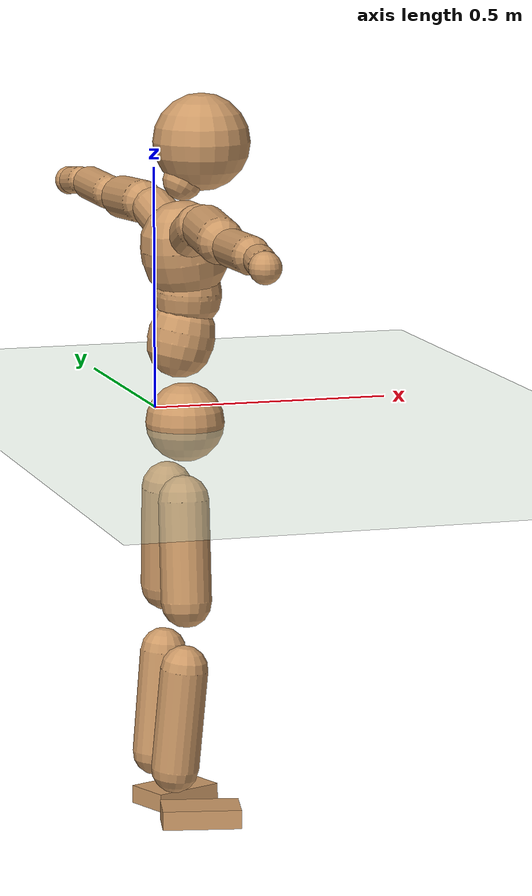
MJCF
<mujoco model="humanoid">
  <compiler coordinate="local" angle="radian"/>
  <default>
    <joint damping="0.0" armature="0.01" stiffness="0.0" limited="true"/>
    <geom conaffinity="1" condim="3" contype="7" margin="0.001" rgba="0.8 0.6 .4 1"/>
  </default>
  <asset>
    <texture type="skybox" builtin="gradient" rgb1=".4 .5 .6" rgb2="0 0 0" width="100" height="100"/>
    <texture builtin="flat" height="1278" mark="cross" markrgb="1 1 1" name="texgeom" random="0.01" rgb1="0.8 0.6 0.4" rgb2="0.8 0.6 0.4" type="cube" width="127"/>
    <texture builtin="checker" height="100" name="texplane" rgb1="0 0 0" rgb2="0.8 0.8 0.8" type="2d" width="100"/>
    <material name="MatPlane" reflectance="0.5" shininess="1" specular="1" texrepeat="60 60" texture="texplane"/>
    <material name="geom" texture="texgeom" texuniform="true"/>
  </asset>
  <worldbody>
    <light cutoff="100" diffuse="1 1 1" dir="-0 0 -1.3" directional="true" exponent="1" pos="0 0 1.3" specular=".1 .1 .1"/>
    <geom conaffinity="1" condim="3" name="floor" pos="0 0 0" rgba="0.8 0.9 0.8 1" size="100 100 .2" type="plane" material="MatPlane"/>
    <body name="Pelvis" pos="0.0008 -0.2209 0.0084">
      <freejoint name="Pelvis"/>
      <geom type="sphere" contype="1" conaffinity="1" density="500" size="0.0802" pos="0.0000 0.0000 0.0000" name="Pelvis"/>
      <body name="L_Hip" pos="-0.0226 0.0504 -0.074">
        <joint name="L_Hip_x" type="hinge" pos="0 0 0" axis="1 0 0" stiffness="800" damping="80" armature="0.02" range="-180.0000 180.0000"/>
        <joint name="L_Hip_y" type="hinge" pos="0 0 0" axis="0 1 0" stiffness="800" damping="80" armature="0.02" range="-180.0000 180.0000"/>
        <joint name="L_Hip_z" type="hinge" pos="0 0 0" axis="0 0 1" stiffness="800" damping="80" armature="0.02" range="-180.0000 180.0000"/>
        <geom type="capsule" contype="1" conaffinity="1" density="500" fromto="0.0013 0.0081 -0.0696 0.0052 0.0323 -0.2786" size="0.0522" name="L_Hip"/>
        <body name="L_Knee" pos="0.0065 0.0404 -0.3482">
          <joint name="L_Knee_x" type="hinge" pos="0 0 0" axis="1 0 0" stiffness="800" damping="80" armature="0.02" range="-180.0000 180.0000"/>
          <joint name="L_Knee_y" type="hinge" pos="0 0 0" axis="0 1 0" stiffness="800" damping="80" armature="0.02" range="-180.0000 180.0000"/>
          <joint name="L_Knee_z" type="hinge" pos="0 0 0" axis="0 0 1" stiffness="800" damping="80" armature="0.02" range="-180.0000 180.0000"/>
          <geom type="capsule" contype="1" conaffinity="1" density="500" fromto="-0.0063 -0.0021 -0.0710 -0.0252 -0.0086 -0.2840" size="0.0475" name="L_Knee"/>
          <body name="L_Ankle" pos="-0.0315 -0.0107 -0.355">
            <joint name="L_Ankle_x" type="hinge" pos="0 0 0" axis="1 0 0" stiffness="800" damping="80" armature="0.02" range="-180.0000 180.0000"/>
            <joint name="L_Ankle_y" type="hinge" pos="0 0 0" axis="0 1 0" stiffness="800" damping="80" armature="0.02" range="-180.0000 180.0000"/>
            <joint name="L_Ankle_z" type="hinge" pos="0 0 0" axis="0 0 1" stiffness="800" damping="80" armature="0.02" range="-180.0000 180.0000"/>
            <geom type="box" contype="1" conaffinity="1" density="500" pos="0.0532 0.0211 -0.0261" size="0.0742 0.0482 0.0185" quat="0.9822 0.0000 0.0000 0.1879" name="L_Ankle"/>
            <body name="L_Toe" pos="0.1064 0.0423 -0.0523">
              <joint name="L_Toe_x" type="hinge" pos="0 0 0" axis="1 0 0" stiffness="500" damping="50" armature="0.02" range="-180.0000 180.0000"/>
              <joint name="L_Toe_y" type="hinge" pos="0 0 0" axis="0 1 0" stiffness="500" damping="50" armature="0.02" range="-180.0000 180.0000"/>
              <joint name="L_Toe_z" type="hinge" pos="0 0 0" axis="0 0 1" stiffness="500" damping="50" armature="0.02" range="-180.0000 180.0000"/>
              <geom type="box" contype="1" conaffinity="1" density="500" pos="0.0000 0.0000 0.0274" size="0.001 0.0023 0.001" quat="0.9813 0.0000 0.0000 0.1926" name="L_Toe"/>
            </body>
          </body>
        </body>
      </body>
      <body name="R_Hip" pos="-0.0199 -0.0529 -0.0814">
        <joint name="R_Hip_x" type="hinge" pos="0 0 0" axis="1 0 0" stiffness="800" damping="80" armature="0.02" range="-180.0000 180.0000"/>
        <joint name="R_Hip_y" type="hinge" pos="0 0 0" axis="0 1 0" stiffness="800" damping="80" armature="0.02" range="-180.0000 180.0000"/>
        <joint name="R_Hip_z" type="hinge" pos="0 0 0" axis="0 0 1" stiffness="800" damping="80" armature="0.02" range="-180.0000 180.0000"/>
        <geom type="capsule" contype="1" conaffinity="1" density="500" fromto="-0.0006 -0.0080 -0.0680 -0.0023 -0.0320 -0.2722" size="0.0519" name="R_Hip"/>
        <body name="R_Knee" pos="-0.0029 -0.04 -0.3402">
          <joint name="R_Knee_x" type="hinge" pos="0 0 0" axis="1 0 0" stiffness="800" damping="80" armature="0.02" range="-180.0000 180.0000"/>
          <joint name="R_Knee_y" type="hinge" pos="0 0 0" axis="0 1 0" stiffness="800" damping="80" armature="0.02" range="-180.0000 180.0000"/>
          <joint name="R_Knee_z" type="hinge" pos="0 0 0" axis="0 0 1" stiffness="800" damping="80" armature="0.02" range="-180.0000 180.0000"/>
          <geom type="capsule" contype="1" conaffinity="1" density="500" fromto="-0.0057 0.0030 -0.0697 -0.0230 0.0121 -0.2786" size="0.0486" name="R_Knee"/>
          <body name="R_Ankle" pos="-0.0287 0.0151 -0.3483">
            <joint name="R_Ankle_x" type="hinge" pos="0 0 0" axis="1 0 0" stiffness="800" damping="80" armature="0.02" range="-180.0000 180.0000"/>
            <joint name="R_Ankle_y" type="hinge" pos="0 0 0" axis="0 1 0" stiffness="800" damping="80" armature="0.02" range="-180.0000 180.0000"/>
            <joint name="R_Ankle_z" type="hinge" pos="0 0 0" axis="0 0 1" stiffness="800" damping="80" armature="0.02" range="-180.0000 180.0000"/>
            <geom type="box" contype="1" conaffinity="1" density="500" pos="0.0571 -0.0122 -0.0280" size="0.0802 0.0466 0.0195" quat="0.9945 0.0000 0.0000 -0.1048" name="R_Ankle"/>
            <body name="R_Toe" pos="0.1142 -0.0243 -0.056">
              <joint name="R_Toe_x" type="hinge" pos="0 0 0" axis="1 0 0" stiffness="500" damping="50" armature="0.02" range="-180.0000 180.0000"/>
              <joint name="R_Toe_y" type="hinge" pos="0 0 0" axis="0 1 0" stiffness="500" damping="50" armature="0.02" range="-180.0000 180.0000"/>
              <joint name="R_Toe_z" type="hinge" pos="0 0 0" axis="0 0 1" stiffness="500" damping="50" armature="0.02" range="-180.0000 180.0000"/>
              <geom type="box" contype="1" conaffinity="1" density="500" pos="0.0000 0.0000 0.0306" size="0.0009 0.0023 0.0011" quat="0.9955 0.0000 0.0000 -0.0948" name="R_Toe"/>
            </body>
          </body>
        </body>
      </body>
      <body name="Torso" pos="-0.0209 0.0036 0.1081">
        <joint name="Torso_x" type="hinge" pos="0 0 0" axis="1 0 0" stiffness="1000" damping="100" armature="0.02" range="-180.0000 180.0000"/>
        <joint name="Torso_y" type="hinge" pos="0 0 0" axis="0 1 0" stiffness="1000" damping="100" armature="0.02" range="-180.0000 180.0000"/>
        <joint name="Torso_z" type="hinge" pos="0 0 0" axis="0 0 1" stiffness="1000" damping="100" armature="0.02" range="-180.0000 180.0000"/>
        <geom type="capsule" contype="1" conaffinity="1" density="500" fromto="0.0179 0.0024 0.0763 0.0120 0.0016 0.0509" size="0.0678" name="Torso"/>
        <body name="Spine" pos="0.0299 0.004 0.1272">
          <joint name="Spine_x" type="hinge" pos="0 0 0" axis="1 0 0" stiffness="1000" damping="100" armature="0.02" range="-180.0000 180.0000"/>
          <joint name="Spine_y" type="hinge" pos="0 0 0" axis="0 1 0" stiffness="1000" damping="100" armature="0.02" range="-180.0000 180.0000"/>
          <joint name="Spine_z" type="hinge" pos="0 0 0" axis="0 0 1" stiffness="1000" damping="100" armature="0.02" range="-180.0000 180.0000"/>
          <geom type="capsule" contype="1" conaffinity="1" density="500" fromto="0.0009 -0.0013 0.0305 0.0006 -0.0009 0.0203" size="0.0675" name="Spine"/>
          <body name="Chest" pos="0.0015 -0.0021 0.0508">
            <joint name="Chest_x" type="hinge" pos="0 0 0" axis="1 0 0" stiffness="1000" damping="100" armature="0.02" range="-180.0000 180.0000"/>
            <joint name="Chest_y" type="hinge" pos="0 0 0" axis="0 1 0" stiffness="1000" damping="100" armature="0.02" range="-180.0000 180.0000"/>
            <joint name="Chest_z" type="hinge" pos="0 0 0" axis="0 0 1" stiffness="1000" damping="100" armature="0.02" range="-180.0000 180.0000"/>
            <geom type="capsule" contype="1" conaffinity="1" density="500" fromto="-0.0132 -0.0056 0.0772 -0.0088 -0.0037 0.0514" size="0.0877" name="Chest"/>
            <body name="Neck" pos="-0.0251 -0.0134 0.1878">
              <joint name="Neck_x" type="hinge" pos="0 0 0" axis="1 0 0" stiffness="500" damping="50" armature="0.02" range="-180.0000 180.0000"/>
              <joint name="Neck_y" type="hinge" pos="0 0 0" axis="0 1 0" stiffness="500" damping="50" armature="0.02" range="-180.0000 180.0000"/>
              <joint name="Neck_z" type="hinge" pos="0 0 0" axis="0 0 1" stiffness="500" damping="50" armature="0.02" range="-180.0000 180.0000"/>
              <geom type="capsule" contype="1" conaffinity="1" density="500" fromto="0.0101 0.0017 0.0187 0.0403 0.0068 0.0749" size="0.0411" name="Neck"/>
              <body name="Head" pos="0.0504 0.0085 0.0936">
                <joint name="Head_x" type="hinge" pos="0 0 0" axis="1 0 0" stiffness="500" damping="50" armature="0.02" range="-180.0000 180.0000"/>
                <joint name="Head_y" type="hinge" pos="0 0 0" axis="0 1 0" stiffness="500" damping="50" armature="0.02" range="-180.0000 180.0000"/>
                <joint name="Head_z" type="hinge" pos="0 0 0" axis="0 0 1" stiffness="500" damping="50" armature="0.02" range="-180.0000 180.0000"/>
                <geom type="sphere" contype="1" conaffinity="1" density="500" size="0.0983" pos="0.0000 0.0000 0.0000" name="Head"/>
              </body>
            </body>
            <body name="L_Thorax" pos="-0.0193 0.0619 0.0984">
              <joint name="L_Thorax_x" type="hinge" pos="0 0 0" axis="1 0 0" stiffness="500" damping="50" armature="0.02" range="-180.0000 180.0000"/>
              <joint name="L_Thorax_y" type="hinge" pos="0 0 0" axis="0 1 0" stiffness="500" damping="50" armature="0.02" range="-180.0000 180.0000"/>
              <joint name="L_Thorax_z" type="hinge" pos="0 0 0" axis="0 0 1" stiffness="500" damping="50" armature="0.02" range="-180.0000 180.0000"/>
              <geom type="capsule" contype="1" conaffinity="1" density="500" fromto="-0.0029 0.0218 0.0080 -0.0117 0.0874 0.0319" size="0.0439" name="L_Thorax"/>
              <body name="L_Shoulder" pos="-0.0146 0.1092 0.0399">
                <joint name="L_Shoulder_x" type="hinge" pos="0 0 0" axis="1 0 0" stiffness="500" damping="50" armature="0.02" range="-720.0000 720.0000"/>
                <joint name="L_Shoulder_y" type="hinge" pos="0 0 0" axis="0 1 0" stiffness="500" damping="50" armature="0.02" range="-720.0000 720.0000"/>
                <joint name="L_Shoulder_z" type="hinge" pos="0 0 0" axis="0 0 1" stiffness="500" damping="50" armature="0.02" range="-720.0000 720.0000"/>
                <geom type="capsule" contype="1" conaffinity="1" density="500" fromto="-0.0021 0.0456 -0.0023 -0.0084 0.1825 -0.0090" size="0.0444" name="L_Shoulder"/>
                <body name="L_Elbow" pos="-0.0106 0.2281 -0.0113">
                  <joint name="L_Elbow_x" type="hinge" pos="0 0 0" axis="1 0 0" stiffness="500" damping="50" armature="0.02" range="-720.0000 720.0000"/>
                  <joint name="L_Elbow_y" type="hinge" pos="0 0 0" axis="0 1 0" stiffness="500" damping="50" armature="0.02" range="-720.0000 720.0000"/>
                  <joint name="L_Elbow_z" type="hinge" pos="0 0 0" axis="0 0 1" stiffness="500" damping="50" armature="0.02" range="-720.0000 720.0000"/>
                  <geom type="capsule" contype="1" conaffinity="1" density="500" fromto="-0.0023 0.0447 0.0013 -0.0092 0.1789 0.0052" size="0.0358" name="L_Elbow"/>
                  <body name="L_Wrist" pos="-0.0116 0.2237 0.0065">
                    <joint name="L_Wrist_x" type="hinge" pos="0 0 0" axis="1 0 0" stiffness="300" damping="30" armature="0.02" range="-180.0000 180.0000"/>
                    <joint name="L_Wrist_y" type="hinge" pos="0 0 0" axis="0 1 0" stiffness="300" damping="30" armature="0.02" range="-180.0000 180.0000"/>
                    <joint name="L_Wrist_z" type="hinge" pos="0 0 0" axis="0 0 1" stiffness="300" damping="30" armature="0.02" range="-180.0000 180.0000"/>
                    <geom type="capsule" contype="1" conaffinity="1" density="500" fromto="-0.0026 0.0146 -0.0018 -0.0104 0.0584 -0.0071" size="0.0289" name="L_Wrist"/>
                    <body name="L_Hand" pos="-0.0129 0.0729 -0.0089">
                      <joint name="L_Hand_x" type="hinge" pos="0 0 0" axis="1 0 0" stiffness="300" damping="30" armature="0.02" range="-180.0000 180.0000"/>
                      <joint name="L_Hand_y" type="hinge" pos="0 0 0" axis="0 1 0" stiffness="300" damping="30" armature="0.02" range="-180.0000 180.0000"/>
                      <joint name="L_Hand_z" type="hinge" pos="0 0 0" axis="0 0 1" stiffness="300" damping="30" armature="0.02" range="-180.0000 180.0000"/>
                      <geom type="sphere" contype="1" conaffinity="1" density="500" size="0.0301" pos="0.0000 0.0000 0.0000" name="L_Hand"/>
                    </body>
                  </body>
                </body>
              </body>
            </body>
            <body name="R_Thorax" pos="-0.0216 -0.0766 0.0996">
              <joint name="R_Thorax_x" type="hinge" pos="0 0 0" axis="1 0 0" stiffness="500" damping="50" armature="0.02" range="-180.0000 180.0000"/>
              <joint name="R_Thorax_y" type="hinge" pos="0 0 0" axis="0 1 0" stiffness="500" damping="50" armature="0.02" range="-180.0000 180.0000"/>
              <joint name="R_Thorax_z" type="hinge" pos="0 0 0" axis="0 0 1" stiffness="500" damping="50" armature="0.02" range="-180.0000 180.0000"/>
              <geom type="capsule" contype="1" conaffinity="1" density="500" fromto="-0.0010 -0.0204 0.0082 -0.0042 -0.0817 0.0328" size="0.045" name="R_Thorax"/>
              <body name="R_Shoulder" pos="-0.0052 -0.1022 0.041">
                <joint name="R_Shoulder_x" type="hinge" pos="0 0 0" axis="1 0 0" stiffness="500" damping="50" armature="0.02" range="-720.0000 720.0000"/>
                <joint name="R_Shoulder_y" type="hinge" pos="0 0 0" axis="0 1 0" stiffness="500" damping="50" armature="0.02" range="-720.0000 720.0000"/>
                <joint name="R_Shoulder_z" type="hinge" pos="0 0 0" axis="0 0 1" stiffness="500" damping="50" armature="0.02" range="-720.0000 720.0000"/>
                <geom type="capsule" contype="1" conaffinity="1" density="500" fromto="-0.0035 -0.0459 -0.0024 -0.0140 -0.1837 -0.0095" size="0.0464" name="R_Shoulder"/>
                <body name="R_Elbow" pos="-0.0175 -0.2296 -0.0118">
                  <joint name="R_Elbow_x" type="hinge" pos="0 0 0" axis="1 0 0" stiffness="500" damping="50" armature="0.02" range="-720.0000 720.0000"/>
                  <joint name="R_Elbow_y" type="hinge" pos="0 0 0" axis="0 1 0" stiffness="500" damping="50" armature="0.02" range="-720.0000 720.0000"/>
                  <joint name="R_Elbow_z" type="hinge" pos="0 0 0" axis="0 0 1" stiffness="500" damping="50" armature="0.02" range="-720.0000 720.0000"/>
                  <geom type="capsule" contype="1" conaffinity="1" density="500" fromto="-0.0014 -0.0468 0.0015 -0.0056 -0.1872 0.0062" size="0.0375" name="R_Elbow"/>
                  <body name="R_Wrist" pos="-0.0069 -0.234 0.0077">
                    <joint name="R_Wrist_x" type="hinge" pos="0 0 0" axis="1 0 0" stiffness="300" damping="30" armature="0.02" range="-180.0000 180.0000"/>
                    <joint name="R_Wrist_y" type="hinge" pos="0 0 0" axis="0 1 0" stiffness="300" damping="30" armature="0.02" range="-180.0000 180.0000"/>
                    <joint name="R_Wrist_z" type="hinge" pos="0 0 0" axis="0 0 1" stiffness="300" damping="30" armature="0.02" range="-180.0000 180.0000"/>
                    <geom type="capsule" contype="1" conaffinity="1" density="500" fromto="-0.0017 -0.0154 -0.0014 -0.0069 -0.0614 -0.0058" size="0.0304" name="R_Wrist"/>
                    <body name="R_Hand" pos="-0.0086 -0.0768 -0.0072">
                      <joint name="R_Hand_x" type="hinge" pos="0 0 0" axis="1 0 0" stiffness="300" damping="30" armature="0.02" range="-180.0000 180.0000"/>
                      <joint name="R_Hand_y" type="hinge" pos="0 0 0" axis="0 1 0" stiffness="300" damping="30" armature="0.02" range="-180.0000 180.0000"/>
                      <joint name="R_Hand_z" type="hinge" pos="0 0 0" axis="0 0 1" stiffness="300" damping="30" armature="0.02" range="-180.0000 180.0000"/>
                      <geom type="sphere" contype="1" conaffinity="1" density="500" size="0.0314" pos="0.0000 0.0000 0.0000" name="R_Hand"/>
                    </body>
                  </body>
                </body>
              </body>
            </body>
          </body>
        </body>
      </body>
    </body>
  </worldbody>
  <actuator>
    <motor name="L_Hip_x" joint="L_Hip_x" gear="500"/>
    <motor name="L_Hip_y" joint="L_Hip_y" gear="500"/>
    <motor name="L_Hip_z" joint="L_Hip_z" gear="500"/>
    <motor name="L_Knee_x" joint="L_Knee_x" gear="500"/>
    <motor name="L_Knee_y" joint="L_Knee_y" gear="500"/>
    <motor name="L_Knee_z" joint="L_Knee_z" gear="500"/>
    <motor name="L_Ankle_x" joint="L_Ankle_x" gear="500"/>
    <motor name="L_Ankle_y" joint="L_Ankle_y" gear="500"/>
    <motor name="L_Ankle_z" joint="L_Ankle_z" gear="500"/>
    <motor name="L_Toe_x" joint="L_Toe_x" gear="500"/>
    <motor name="L_Toe_y" joint="L_Toe_y" gear="500"/>
    <motor name="L_Toe_z" joint="L_Toe_z" gear="500"/>
    <motor name="R_Hip_x" joint="R_Hip_x" gear="500"/>
    <motor name="R_Hip_y" joint="R_Hip_y" gear="500"/>
    <motor name="R_Hip_z" joint="R_Hip_z" gear="500"/>
    <motor name="R_Knee_x" joint="R_Knee_x" gear="500"/>
    <motor name="R_Knee_y" joint="R_Knee_y" gear="500"/>
    <motor name="R_Knee_z" joint="R_Knee_z" gear="500"/>
    <motor name="R_Ankle_x" joint="R_Ankle_x" gear="500"/>
    <motor name="R_Ankle_y" joint="R_Ankle_y" gear="500"/>
    <motor name="R_Ankle_z" joint="R_Ankle_z" gear="500"/>
    <motor name="R_Toe_x" joint="R_Toe_x" gear="500"/>
    <motor name="R_Toe_y" joint="R_Toe_y" gear="500"/>
    <motor name="R_Toe_z" joint="R_Toe_z" gear="500"/>
    <motor name="Torso_x" joint="Torso_x" gear="500"/>
    <motor name="Torso_y" joint="Torso_y" gear="500"/>
    <motor name="Torso_z" joint="Torso_z" gear="500"/>
    <motor name="Spine_x" joint="Spine_x" gear="500"/>
    <motor name="Spine_y" joint="Spine_y" gear="500"/>
    <motor name="Spine_z" joint="Spine_z" gear="500"/>
    <motor name="Chest_x" joint="Chest_x" gear="500"/>
    <motor name="Chest_y" joint="Chest_y" gear="500"/>
    <motor name="Chest_z" joint="Chest_z" gear="500"/>
    <motor name="Neck_x" joint="Neck_x" gear="500"/>
    <motor name="Neck_y" joint="Neck_y" gear="500"/>
    <motor name="Neck_z" joint="Neck_z" gear="500"/>
    <motor name="Head_x" joint="Head_x" gear="500"/>
    <motor name="Head_y" joint="Head_y" gear="500"/>
    <motor name="Head_z" joint="Head_z" gear="500"/>
    <motor name="L_Thorax_x" joint="L_Thorax_x" gear="500"/>
    <motor name="L_Thorax_y" joint="L_Thorax_y" gear="500"/>
    <motor name="L_Thorax_z" joint="L_Thorax_z" gear="500"/>
    <motor name="L_Shoulder_x" joint="L_Shoulder_x" gear="500"/>
    <motor name="L_Shoulder_y" joint="L_Shoulder_y" gear="500"/>
    <motor name="L_Shoulder_z" joint="L_Shoulder_z" gear="500"/>
    <motor name="L_Elbow_x" joint="L_Elbow_x" gear="500"/>
    <motor name="L_Elbow_y" joint="L_Elbow_y" gear="500"/>
    <motor name="L_Elbow_z" joint="L_Elbow_z" gear="500"/>
    <motor name="L_Wrist_x" joint="L_Wrist_x" gear="500"/>
    <motor name="L_Wrist_y" joint="L_Wrist_y" gear="500"/>
    <motor name="L_Wrist_z" joint="L_Wrist_z" gear="500"/>
    <motor name="L_Hand_x" joint="L_Hand_x" gear="500"/>
    <motor name="L_Hand_y" joint="L_Hand_y" gear="500"/>
    <motor name="L_Hand_z" joint="L_Hand_z" gear="500"/>
    <motor name="R_Thorax_x" joint="R_Thorax_x" gear="500"/>
    <motor name="R_Thorax_y" joint="R_Thorax_y" gear="500"/>
    <motor name="R_Thorax_z" joint="R_Thorax_z" gear="500"/>
    <motor name="R_Shoulder_x" joint="R_Shoulder_x" gear="500"/>
    <motor name="R_Shoulder_y" joint="R_Shoulder_y" gear="500"/>
    <motor name="R_Shoulder_z" joint="R_Shoulder_z" gear="500"/>
    <motor name="R_Elbow_x" joint="R_Elbow_x" gear="500"/>
    <motor name="R_Elbow_y" joint="R_Elbow_y" gear="500"/>
    <motor name="R_Elbow_z" joint="R_Elbow_z" gear="500"/>
    <motor name="R_Wrist_x" joint="R_Wrist_x" gear="500"/>
    <motor name="R_Wrist_y" joint="R_Wrist_y" gear="500"/>
    <motor name="R_Wrist_z" joint="R_Wrist_z" gear="500"/>
    <motor name="R_Hand_x" joint="R_Hand_x" gear="500"/>
    <motor name="R_Hand_y" joint="R_Hand_y" gear="500"/>
    <motor name="R_Hand_z" joint="R_Hand_z" gear="500"/>
  </actuator>
  <contact>
    <exclude body1="Torso" body2="Chest"/>
    <exclude body1="Head" body2="Chest"/>
    <exclude body1="R_Knee" body2="R_Toe"/>
    <exclude body1="R_Knee" body2="L_Ankle"/>
    <exclude body1="R_Knee" body2="L_Toe"/>
    <exclude body1="L_Knee" body2="L_Toe"/>
    <exclude body1="L_Knee" body2="R_Ankle"/>
    <exclude body1="L_Knee" body2="R_Toe"/>
    <exclude body1="L_Shoulder" body2="Chest"/>
    <exclude body1="R_Shoulder" body2="Chest"/>
  </contact>
  <sensor/>
  <size njmax="700" nconmax="700"/>
</mujoco>
